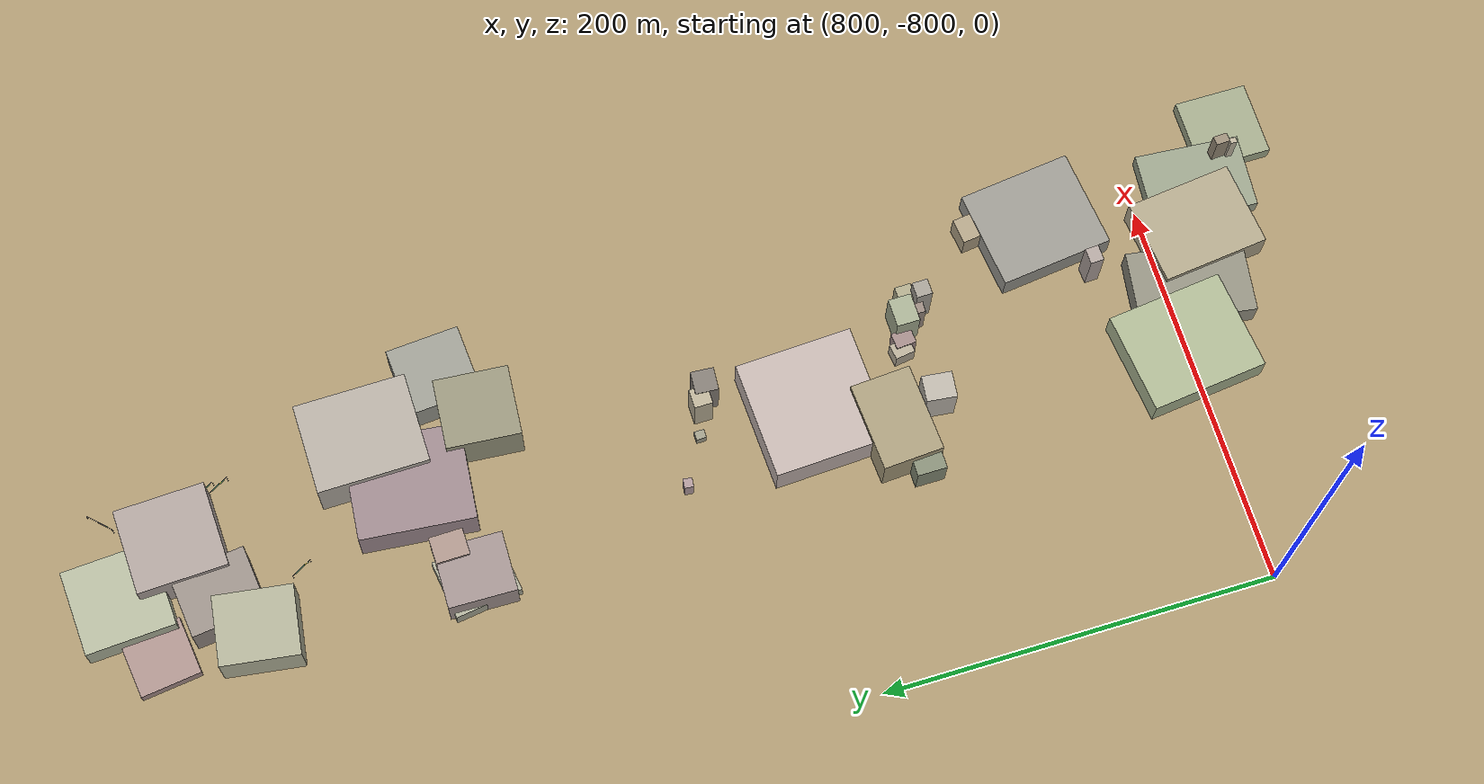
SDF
<sdf version="1.9">
 <world name="crossroad_world">
  <model name="ground_plane">
   <static>true</static>
   <pose>0 0 -0.05 0 0 0</pose>
   <link name="link">
    <collision name="collision">
     <geometry><plane><normal>0 0 1</normal><size>10000 10000</size></plane></geometry>
    </collision>
    <visual name="visual">
     <geometry><plane><normal>0 0 1</normal><size>15000 15000</size></plane></geometry>
     <material><ambient>0.68 0.60 0.45 1</ambient><diffuse>0.68 0.60 0.45 1</diffuse></material>
    </visual>
   </link>
  </model>
  <model name="gantry_34">
   <static>true</static>
   <pose>992.937 -313.116 0 0 0 -1.076</pose>
   <link name="link">
    <visual name="post_l">
     <pose>-5.700 0 2.925 0 0 0</pose>
     <geometry><cylinder><radius>0.1</radius><length>5.85</length></cylinder></geometry>
     <material><ambient>0.30 0.30 0.35 1</ambient><diffuse>0.30 0.30 0.35 1</diffuse></material>
    </visual>
    <visual name="post_r">
     <pose>5.700 0 2.925 0 0 0</pose>
     <geometry><cylinder><radius>0.1</radius><length>5.85</length></cylinder></geometry>
     <material><ambient>0.30 0.30 0.35 1</ambient><diffuse>0.30 0.30 0.35 1</diffuse></material>
    </visual>
    <visual name="beam">
     <pose>0 0 6.000 0 0 0</pose>
     <geometry><box><size>11.400 0.22 0.22</size></box></geometry>
     <material><ambient>0.30 0.30 0.35 1</ambient><diffuse>0.30 0.30 0.35 1</diffuse></material>
    </visual>
    <visual name="sign_border">
     <pose>0 -0.14 5.450 0 0 0</pose>
     <geometry><box><size>8.288 0.04 0.92</size></box></geometry>
     <material><ambient>0.90 0.85 0.10 1</ambient><diffuse>0.90 0.85 0.10 1</diffuse></material>
    </visual>
    <visual name="sign_panel">
     <pose>0 -0.15 5.450 0 0 0</pose>
     <geometry><box><size>8.208 0.05 0.86</size></box></geometry>
     <material><ambient>0.05 0.38 0.10 1</ambient><diffuse>0.05 0.38 0.10 1</diffuse></material>
    </visual>
    <collision name="col_post_l">
     <pose>-5.700 0 2.925 0 0 0</pose>
     <geometry><cylinder><radius>0.1</radius><length>5.85</length></cylinder></geometry>
    </collision>
    <collision name="col_post_r">
     <pose>5.700 0 2.925 0 0 0</pose>
     <geometry><cylinder><radius>0.1</radius><length>5.85</length></cylinder></geometry>
    </collision>
    <collision name="col_beam">
     <pose>0 0 6.000 0 0 0</pose>
     <geometry><box><size>11.400 0.22 0.22</size></box></geometry>
    </collision>
   </link>
  </model>
  <model name="gantry_116">
   <static>true</static>
   <pose>991.135 -260.529 0 0 0 0.791</pose>
   <link name="link">
    <visual name="post_l">
     <pose>-7.300 0 2.925 0 0 0</pose>
     <geometry><cylinder><radius>0.1</radius><length>5.85</length></cylinder></geometry>
     <material><ambient>0.30 0.30 0.35 1</ambient><diffuse>0.30 0.30 0.35 1</diffuse></material>
    </visual>
    <visual name="post_r">
     <pose>7.300 0 2.925 0 0 0</pose>
     <geometry><cylinder><radius>0.1</radius><length>5.85</length></cylinder></geometry>
     <material><ambient>0.30 0.30 0.35 1</ambient><diffuse>0.30 0.30 0.35 1</diffuse></material>
    </visual>
    <visual name="beam">
     <pose>0 0 6.000 0 0 0</pose>
     <geometry><box><size>14.600 0.22 0.22</size></box></geometry>
     <material><ambient>0.30 0.30 0.35 1</ambient><diffuse>0.30 0.30 0.35 1</diffuse></material>
    </visual>
    <visual name="sign_border">
     <pose>0 -0.14 5.450 0 0 0</pose>
     <geometry><box><size>10.592 0.04 0.92</size></box></geometry>
     <material><ambient>0.90 0.85 0.10 1</ambient><diffuse>0.90 0.85 0.10 1</diffuse></material>
    </visual>
    <visual name="sign_panel">
     <pose>0 -0.15 5.450 0 0 0</pose>
     <geometry><box><size>10.512 0.05 0.86</size></box></geometry>
     <material><ambient>0.05 0.38 0.10 1</ambient><diffuse>0.05 0.38 0.10 1</diffuse></material>
    </visual>
    <collision name="col_post_l">
     <pose>-7.300 0 2.925 0 0 0</pose>
     <geometry><cylinder><radius>0.1</radius><length>5.85</length></cylinder></geometry>
    </collision>
    <collision name="col_post_r">
     <pose>7.300 0 2.925 0 0 0</pose>
     <geometry><cylinder><radius>0.1</radius><length>5.85</length></cylinder></geometry>
    </collision>
    <collision name="col_beam">
     <pose>0 0 6.000 0 0 0</pose>
     <geometry><box><size>14.600 0.22 0.22</size></box></geometry>
    </collision>
   </link>
  </model>
  <model name="gantry_136">
   <static>true</static>
   <pose>993.205 -320.525 0 0 0 -1.072</pose>
   <link name="link">
    <visual name="post_l">
     <pose>-5.700 0 2.925 0 0 0</pose>
     <geometry><cylinder><radius>0.1</radius><length>5.85</length></cylinder></geometry>
     <material><ambient>0.30 0.30 0.35 1</ambient><diffuse>0.30 0.30 0.35 1</diffuse></material>
    </visual>
    <visual name="post_r">
     <pose>5.700 0 2.925 0 0 0</pose>
     <geometry><cylinder><radius>0.1</radius><length>5.85</length></cylinder></geometry>
     <material><ambient>0.30 0.30 0.35 1</ambient><diffuse>0.30 0.30 0.35 1</diffuse></material>
    </visual>
    <visual name="beam">
     <pose>0 0 6.000 0 0 0</pose>
     <geometry><box><size>11.400 0.22 0.22</size></box></geometry>
     <material><ambient>0.30 0.30 0.35 1</ambient><diffuse>0.30 0.30 0.35 1</diffuse></material>
    </visual>
    <visual name="sign_border">
     <pose>0 -0.14 5.450 0 0 0</pose>
     <geometry><box><size>8.288 0.04 0.92</size></box></geometry>
     <material><ambient>0.90 0.85 0.10 1</ambient><diffuse>0.90 0.85 0.10 1</diffuse></material>
    </visual>
    <visual name="sign_panel">
     <pose>0 -0.15 5.450 0 0 0</pose>
     <geometry><box><size>8.208 0.05 0.86</size></box></geometry>
     <material><ambient>0.05 0.38 0.10 1</ambient><diffuse>0.05 0.38 0.10 1</diffuse></material>
    </visual>
    <collision name="col_post_l">
     <pose>-5.700 0 2.925 0 0 0</pose>
     <geometry><cylinder><radius>0.1</radius><length>5.85</length></cylinder></geometry>
    </collision>
    <collision name="col_post_r">
     <pose>5.700 0 2.925 0 0 0</pose>
     <geometry><cylinder><radius>0.1</radius><length>5.85</length></cylinder></geometry>
    </collision>
    <collision name="col_beam">
     <pose>0 0 6.000 0 0 0</pose>
     <geometry><box><size>11.400 0.22 0.22</size></box></geometry>
    </collision>
   </link>
  </model>
  <model name="gantry_137">
   <static>true</static>
   <pose>940.513 -349.223 0 0 0 -1.072</pose>
   <link name="link">
    <visual name="post_l">
     <pose>-5.700 0 2.925 0 0 0</pose>
     <geometry><cylinder><radius>0.1</radius><length>5.85</length></cylinder></geometry>
     <material><ambient>0.30 0.30 0.35 1</ambient><diffuse>0.30 0.30 0.35 1</diffuse></material>
    </visual>
    <visual name="post_r">
     <pose>5.700 0 2.925 0 0 0</pose>
     <geometry><cylinder><radius>0.1</radius><length>5.85</length></cylinder></geometry>
     <material><ambient>0.30 0.30 0.35 1</ambient><diffuse>0.30 0.30 0.35 1</diffuse></material>
    </visual>
    <visual name="beam">
     <pose>0 0 6.000 0 0 0</pose>
     <geometry><box><size>11.400 0.22 0.22</size></box></geometry>
     <material><ambient>0.30 0.30 0.35 1</ambient><diffuse>0.30 0.30 0.35 1</diffuse></material>
    </visual>
    <visual name="sign_border">
     <pose>0 -0.14 5.450 0 0 0</pose>
     <geometry><box><size>8.288 0.04 0.92</size></box></geometry>
     <material><ambient>0.90 0.85 0.10 1</ambient><diffuse>0.90 0.85 0.10 1</diffuse></material>
    </visual>
    <visual name="sign_panel">
     <pose>0 -0.15 5.450 0 0 0</pose>
     <geometry><box><size>8.208 0.05 0.86</size></box></geometry>
     <material><ambient>0.05 0.38 0.10 1</ambient><diffuse>0.05 0.38 0.10 1</diffuse></material>
    </visual>
    <collision name="col_post_l">
     <pose>-5.700 0 2.925 0 0 0</pose>
     <geometry><cylinder><radius>0.1</radius><length>5.85</length></cylinder></geometry>
    </collision>
    <collision name="col_post_r">
     <pose>5.700 0 2.925 0 0 0</pose>
     <geometry><cylinder><radius>0.1</radius><length>5.85</length></cylinder></geometry>
    </collision>
    <collision name="col_beam">
     <pose>0 0 6.000 0 0 0</pose>
     <geometry><box><size>11.400 0.22 0.22</size></box></geometry>
    </collision>
   </link>
  </model>
  <model name="building_128">
   <static>true</static>
   <pose>916.845 -273.272 3.079 0 0 0.126</pose>
   <link name="link">
    <visual name="body">
     <geometry><box><size>29.81 30.82 6.16</size></box></geometry>
     <material><ambient>0.68 0.58 0.56 1</ambient><diffuse>0.68 0.58 0.56 1</diffuse></material>
    </visual>
    <collision name="col"><geometry><box><size>29.81 30.82 6.16</size></box></geometry></collision>
   </link>
  </model>
  <model name="building_134">
   <static>true</static>
   <pose>988.105 -452.023 13.310 0 0 -0.078</pose>
   <link name="link">
    <visual name="body">
     <geometry><box><size>35.83 37.58 26.62</size></box></geometry>
     <material><ambient>0.60 0.59 0.49 1</ambient><diffuse>0.60 0.59 0.49 1</diffuse></material>
    </visual>
    <collision name="col"><geometry><box><size>35.83 37.58 26.62</size></box></geometry></collision>
   </link>
  </model>
  <model name="building_135">
   <static>true</static>
   <pose>991.462 -394.542 13.229 0 0 0.012</pose>
   <link name="link">
    <visual name="body">
     <geometry><box><size>46.24 56.36 26.46</size></box></geometry>
     <material><ambient>0.71 0.68 0.64 1</ambient><diffuse>0.71 0.68 0.64 1</diffuse></material>
    </visual>
    <collision name="col"><geometry><box><size>46.24 56.36 26.46</size></box></geometry></collision>
   </link>
  </model>
  <model name="building_136">
   <static>true</static>
   <pose>1015.146 -436.823 9.623 0 0 0.073</pose>
   <link name="link">
    <visual name="body">
     <geometry><box><size>35.46 37.33 19.25</size></box></geometry>
     <material><ambient>0.62 0.62 0.58 1</ambient><diffuse>0.62 0.62 0.58 1</diffuse></material>
    </visual>
    <collision name="col"><geometry><box><size>35.46 37.33 19.25</size></box></geometry></collision>
   </link>
  </model>
  <model name="building_145">
   <static>true</static>
   <pose>914.267 -322.082 10.995 0 0 -0.138</pose>
   <link name="link">
    <visual name="body">
     <geometry><box><size>35.39 39.65 21.99</size></box></geometry>
     <material><ambient>0.70 0.70 0.60 1</ambient><diffuse>0.70 0.70 0.60 1</diffuse></material>
    </visual>
    <collision name="col"><geometry><box><size>35.39 39.65 21.99</size></box></geometry></collision>
   </link>
  </model>
  <model name="building_146">
   <static>true</static>
   <pose>910.966 -429.190 9.869 0 0 -0.018</pose>
   <link name="link">
    <visual name="body">
     <geometry><box><size>30.45 34.43 19.74</size></box></geometry>
     <material><ambient>0.64 0.58 0.57 1</ambient><diffuse>0.64 0.58 0.57 1</diffuse></material>
    </visual>
    <collision name="col"><geometry><box><size>30.45 34.43 19.74</size></box></geometry></collision>
   </link>
  </model>
  <model name="building_147">
   <static>true</static>
   <pose>910.966 -429.190 4.375 0 0 0.141</pose>
   <link name="link">
    <visual name="body">
     <geometry><box><size>30.45 34.43 8.75</size></box></geometry>
     <material><ambient>0.69 0.69 0.61 1</ambient><diffuse>0.69 0.69 0.61 1</diffuse></material>
    </visual>
    <collision name="col"><geometry><box><size>30.45 34.43 8.75</size></box></geometry></collision>
   </link>
  </model>
  <model name="building_277">
   <static>true</static>
   <pose>945.124 -610.710 9.990 0 0 0.045</pose>
   <link name="link">
    <visual name="body">
     <geometry><box><size>60.00 60.00 19.98</size></box></geometry>
     <material><ambient>0.77 0.71 0.69 1</ambient><diffuse>0.77 0.71 0.69 1</diffuse></material>
    </visual>
    <collision name="col"><geometry><box><size>60.00 60.00 19.98</size></box></geometry></collision>
   </link>
  </model>
  <model name="building_278">
   <static>true</static>
   <pose>976.567 -675.726 10.396 0 0 -0.035</pose>
   <link name="link">
    <visual name="body">
     <geometry><box><size>5.44 4.62 20.79</size></box></geometry>
     <material><ambient>0.60 0.54 0.50 1</ambient><diffuse>0.60 0.54 0.50 1</diffuse></material>
    </visual>
    <collision name="col"><geometry><box><size>5.44 4.62 20.79</size></box></geometry></collision>
   </link>
  </model>
  <model name="building_279">
   <static>true</static>
   <pose>987.142 -671.893 8.792 0 0 0.014</pose>
   <link name="link">
    <visual name="body">
     <geometry><box><size>8.32 8.26 17.58</size></box></geometry>
     <material><ambient>0.69 0.67 0.55 1</ambient><diffuse>0.69 0.67 0.55 1</diffuse></material>
    </visual>
    <collision name="col"><geometry><box><size>8.32 8.26 17.58</size></box></geometry></collision>
   </link>
  </model>
  <model name="building_280">
   <static>true</static>
   <pose>983.642 -678.996 13.611 0 0 0.015</pose>
   <link name="link">
    <visual name="body">
     <geometry><box><size>7.98 8.04 27.22</size></box></geometry>
     <material><ambient>0.65 0.63 0.59 1</ambient><diffuse>0.65 0.63 0.59 1</diffuse></material>
    </visual>
    <collision name="col"><geometry><box><size>7.98 8.04 27.22</size></box></geometry></collision>
   </link>
  </model>
  <model name="building_281">
   <static>true</static>
   <pose>976.981 -667.672 11.269 0 0 0.008</pose>
   <link name="link">
    <visual name="body">
     <geometry><box><size>14.46 11.81 22.54</size></box></geometry>
     <material><ambient>0.66 0.69 0.58 1</ambient><diffuse>0.66 0.69 0.58 1</diffuse></material>
    </visual>
    <collision name="col"><geometry><box><size>14.46 11.81 22.54</size></box></geometry></collision>
   </link>
  </model>
  <model name="building_282">
   <static>true</static>
   <pose>966.714 -664.829 5.747 0 0 0.073</pose>
   <link name="link">
    <visual name="body">
     <geometry><box><size>8.12 10.30 11.49</size></box></geometry>
     <material><ambient>0.64 0.55 0.54 1</ambient><diffuse>0.64 0.55 0.54 1</diffuse></material>
    </visual>
    <collision name="col"><geometry><box><size>8.12 10.30 11.49</size></box></geometry></collision>
   </link>
  </model>
  <model name="building_283">
   <static>true</static>
   <pose>962.058 -662.601 5.312 0 0 0.142</pose>
   <link name="link">
    <visual name="body">
     <geometry><box><size>7.84 10.25 10.62</size></box></geometry>
     <material><ambient>0.72 0.68 0.60 1</ambient><diffuse>0.72 0.68 0.60 1</diffuse></material>
    </visual>
    <collision name="col"><geometry><box><size>7.84 10.25 10.62</size></box></geometry></collision>
   </link>
  </model>
  <model name="building_284">
   <static>true</static>
   <pose>900.975 -655.212 8.921 0 0 0.002</pose>
   <link name="link">
    <visual name="body">
     <geometry><box><size>12.97 15.09 17.84</size></box></geometry>
     <material><ambient>0.53 0.56 0.47 1</ambient><diffuse>0.53 0.56 0.47 1</diffuse></material>
    </visual>
    <collision name="col"><geometry><box><size>12.97 15.09 17.84</size></box></geometry></collision>
   </link>
  </model>
  <model name="building_285">
   <static>true</static>
   <pose>933.375 -671.184 12.076 0 0 -0.110</pose>
   <link name="link">
    <visual name="body">
     <geometry><box><size>13.32 15.35 24.15</size></box></geometry>
     <material><ambient>0.74 0.71 0.67 1</ambient><diffuse>0.74 0.71 0.67 1</diffuse></material>
    </visual>
    <collision name="col"><geometry><box><size>13.32 15.35 24.15</size></box></geometry></collision>
   </link>
  </model>
  <model name="building_286">
   <static>true</static>
   <pose>924.598 -646.574 11.588 0 0 0.063</pose>
   <link name="link">
    <visual name="body">
     <geometry><box><size>45.12 30.96 23.18</size></box></geometry>
     <material><ambient>0.67 0.62 0.49 1</ambient><diffuse>0.67 0.62 0.49 1</diffuse></material>
    </visual>
    <collision name="col"><geometry><box><size>45.12 30.96 23.18</size></box></geometry></collision>
   </link>
  </model>
  <model name="building_295">
   <static>true</static>
   <pose>1029.983 -857.704 4.029 0 0 -0.003</pose>
   <link name="link">
    <visual name="body">
     <geometry><box><size>37.64 37.08 8.06</size></box></geometry>
     <material><ambient>0.64 0.67 0.55 1</ambient><diffuse>0.64 0.67 0.55 1</diffuse></material>
    </visual>
    <collision name="col"><geometry><box><size>37.64 37.08 8.06</size></box></geometry></collision>
   </link>
  </model>
  <model name="building_296">
   <static>true</static>
   <pose>1005.639 -834.189 4.544 0 0 -0.077</pose>
   <link name="link">
    <visual name="body">
     <geometry><box><size>37.99 53.65 9.09</size></box></geometry>
     <material><ambient>0.61 0.64 0.55 1</ambient><diffuse>0.61 0.64 0.55 1</diffuse></material>
    </visual>
    <collision name="col"><geometry><box><size>37.99 53.65 9.09</size></box></geometry></collision>
   </link>
  </model>
  <model name="building_297">
   <static>true</static>
   <pose>980.512 -823.996 8.841 0 0 0.112</pose>
   <link name="link">
    <visual name="body">
     <geometry><box><size>43.45 54.90 17.68</size></box></geometry>
     <material><ambient>0.70 0.66 0.55 1</ambient><diffuse>0.70 0.66 0.55 1</diffuse></material>
    </visual>
    <collision name="col"><geometry><box><size>43.45 54.90 17.68</size></box></geometry></collision>
   </link>
  </model>
  <model name="building_298">
   <static>true</static>
   <pose>952.589 -811.016 7.267 0 0 -0.143</pose>
   <link name="link">
    <visual name="body">
     <geometry><box><size>38.68 59.15 14.53</size></box></geometry>
     <material><ambient>0.58 0.57 0.51 1</ambient><diffuse>0.58 0.57 0.51 1</diffuse></material>
    </visual>
    <collision name="col"><geometry><box><size>38.68 59.15 14.53</size></box></geometry></collision>
   </link>
  </model>
  <model name="building_299">
   <static>true</static>
   <pose>923.070 -797.911 7.716 0 0 0.113</pose>
   <link name="link">
    <visual name="body">
     <geometry><box><size>51.83 60.00 15.43</size></box></geometry>
     <material><ambient>0.68 0.72 0.58 1</ambient><diffuse>0.68 0.72 0.58 1</diffuse></material>
    </visual>
    <collision name="col"><geometry><box><size>51.83 60.00 15.43</size></box></geometry></collision>
   </link>
  </model>
  <model name="building_309">
   <static>true</static>
   <pose>1014.824 -854.594 12.705 0 0 -0.045</pose>
   <link name="link">
    <visual name="body">
     <geometry><box><size>2.78 3.35 25.41</size></box></geometry>
     <material><ambient>0.75 0.71 0.63 1</ambient><diffuse>0.75 0.71 0.63 1</diffuse></material>
    </visual>
    <collision name="col"><geometry><box><size>2.78 3.35 25.41</size></box></geometry></collision>
   </link>
  </model>
  <model name="building_310">
   <static>true</static>
   <pose>1016.625 -848.844 13.479 0 0 0.063</pose>
   <link name="link">
    <visual name="body">
     <geometry><box><size>4.60 7.18 26.96</size></box></geometry>
     <material><ambient>0.61 0.56 0.48 1</ambient><diffuse>0.61 0.56 0.48 1</diffuse></material>
    </visual>
    <collision name="col"><geometry><box><size>4.60 7.18 26.96</size></box></geometry></collision>
   </link>
  </model>
  <model name="building_321">
   <static>true</static>
   <pose>925.855 -540.636 5.273 0 0 -0.114</pose>
   <link name="link">
    <visual name="body">
     <geometry><box><size>4.82 4.55 10.55</size></box></geometry>
     <material><ambient>0.69 0.60 0.61 1</ambient><diffuse>0.69 0.60 0.61 1</diffuse></material>
    </visual>
    <collision name="col"><geometry><box><size>4.82 4.55 10.55</size></box></geometry></collision>
   </link>
  </model>
  <model name="building_322">
   <static>true</static>
   <pose>949.621 -554.056 2.705 0 0 0.023</pose>
   <link name="link">
    <visual name="body">
     <geometry><box><size>4.35 5.02 5.41</size></box></geometry>
     <material><ambient>0.63 0.62 0.54 1</ambient><diffuse>0.63 0.62 0.54 1</diffuse></material>
    </visual>
    <collision name="col"><geometry><box><size>4.35 5.02 5.41</size></box></geometry></collision>
   </link>
  </model>
  <model name="building_323">
   <static>true</static>
   <pose>962.236 -558.057 12.185 0 0 0.003</pose>
   <link name="link">
    <visual name="body">
     <geometry><box><size>9.63 9.32 24.37</size></box></geometry>
     <material><ambient>0.74 0.70 0.60 1</ambient><diffuse>0.74 0.70 0.60 1</diffuse></material>
    </visual>
    <collision name="col"><geometry><box><size>9.63 9.32 24.37</size></box></geometry></collision>
   </link>
  </model>
  <model name="building_324">
   <static>true</static>
   <pose>969.362 -562.114 12.394 0 0 -0.064</pose>
   <link name="link">
    <visual name="body">
     <geometry><box><size>11.61 11.73 24.79</size></box></geometry>
     <material><ambient>0.52 0.49 0.46 1</ambient><diffuse>0.52 0.49 0.46 1</diffuse></material>
    </visual>
    <collision name="col"><geometry><box><size>11.61 11.73 24.79</size></box></geometry></collision>
   </link>
  </model>
  <model name="building_329">
   <static>true</static>
   <pose>1012.763 -714.364 6.984 0 0 0.121</pose>
   <link name="link">
    <visual name="body">
     <geometry><box><size>12.91 11.47 13.97</size></box></geometry>
     <material><ambient>0.70 0.64 0.53 1</ambient><diffuse>0.70 0.64 0.53 1</diffuse></material>
    </visual>
    <collision name="col"><geometry><box><size>12.91 11.47 13.97</size></box></geometry></collision>
   </link>
  </model>
  <model name="building_330">
   <static>true</static>
   <pose>1007.333 -747.946 7.114 0 0 0.116</pose>
   <link name="link">
    <visual name="body">
     <geometry><box><size>50.74 58.15 14.23</size></box></geometry>
     <material><ambient>0.61 0.60 0.57 1</ambient><diffuse>0.61 0.60 0.57 1</diffuse></material>
    </visual>
    <collision name="col"><geometry><box><size>50.74 58.15 14.23</size></box></geometry></collision>
   </link>
  </model>
  <model name="building_331">
   <static>true</static>
   <pose>976.436 -766.828 12.936 0 0 0.038</pose>
   <link name="link">
    <visual name="body">
     <geometry><box><size>8.05 6.94 25.87</size></box></geometry>
     <material><ambient>0.70 0.65 0.63 1</ambient><diffuse>0.70 0.65 0.63 1</diffuse></material>
    </visual>
    <collision name="col"><geometry><box><size>8.05 6.94 25.87</size></box></geometry></collision>
   </link>
  </model>
  <model name="building_400">
   <static>true</static>
   <pose>925.548 -420.395 10.729 0 0 0.017</pose>
   <link name="link">
    <visual name="body">
     <geometry><box><size>13.59 17.02 21.46</size></box></geometry>
     <material><ambient>0.68 0.59 0.55 1</ambient><diffuse>0.68 0.59 0.55 1</diffuse></material>
    </visual>
    <collision name="col"><geometry><box><size>13.59 17.02 21.46</size></box></geometry></collision>
   </link>
  </model>
  <model name="building_401">
   <static>true</static>
   <pose>925.548 -420.395 5.516 0 0 -0.037</pose>
   <link name="link">
    <visual name="body">
     <geometry><box><size>13.59 17.02 11.03</size></box></geometry>
     <material><ambient>0.74 0.68 0.58 1</ambient><diffuse>0.74 0.68 0.58 1</diffuse></material>
    </visual>
    <collision name="col"><geometry><box><size>13.59 17.02 11.03</size></box></geometry></collision>
   </link>
  </model>
  <model name="building_607">
   <static>true</static>
   <pose>967.451 -293.373 12.193 0 0 0.041</pose>
   <link name="link">
    <visual name="body">
     <geometry><box><size>43.54 45.44 24.39</size></box></geometry>
     <material><ambient>0.69 0.64 0.62 1</ambient><diffuse>0.69 0.64 0.62 1</diffuse></material>
    </visual>
    <collision name="col"><geometry><box><size>43.54 45.44 24.39</size></box></geometry></collision>
   </link>
  </model>
  <model name="building_608">
   <static>true</static>
   <pose>935.764 -308.561 10.705 0 0 0.114</pose>
   <link name="link">
    <visual name="body">
     <geometry><box><size>32.82 38.09 21.41</size></box></geometry>
     <material><ambient>0.61 0.57 0.54 1</ambient><diffuse>0.61 0.57 0.54 1</diffuse></material>
    </visual>
    <collision name="col"><geometry><box><size>32.82 38.09 21.41</size></box></geometry></collision>
   </link>
  </model>
  <model name="building_627">
   <static>true</static>
   <pose>948.573 -261.342 7.313 0 0 0.061</pose>
   <link name="link">
    <visual name="body">
     <geometry><box><size>43.61 45.32 14.63</size></box></geometry>
     <material><ambient>0.71 0.73 0.63 1</ambient><diffuse>0.71 0.73 0.63 1</diffuse></material>
    </visual>
    <collision name="col"><geometry><box><size>43.61 45.32 14.63</size></box></geometry></collision>
   </link>
  </model>
  <model name="building_678">
   <static>true</static>
   <pose>962.423 -410.559 11.191 0 0 -0.093</pose>
   <link name="link">
    <visual name="body">
     <geometry><box><size>49.33 58.22 22.38</size></box></geometry>
     <material><ambient>0.62 0.54 0.56 1</ambient><diffuse>0.62 0.54 0.56 1</diffuse></material>
    </visual>
    <collision name="col"><geometry><box><size>49.33 58.22 22.38</size></box></geometry></collision>
   </link>
  </model>
 </world>
</sdf>
